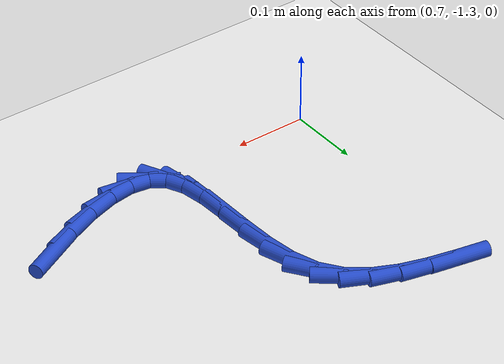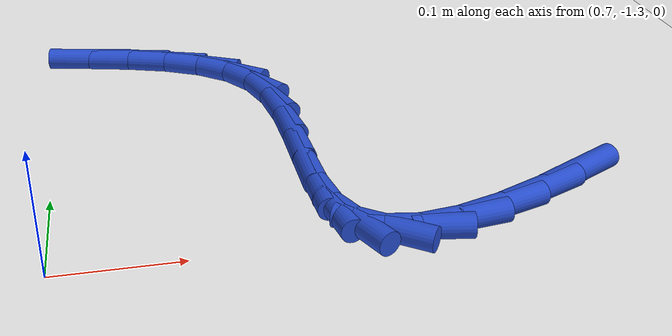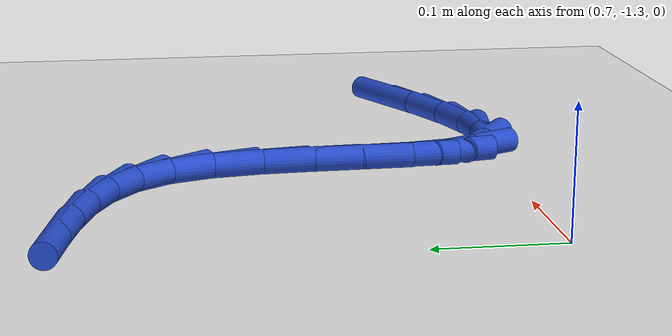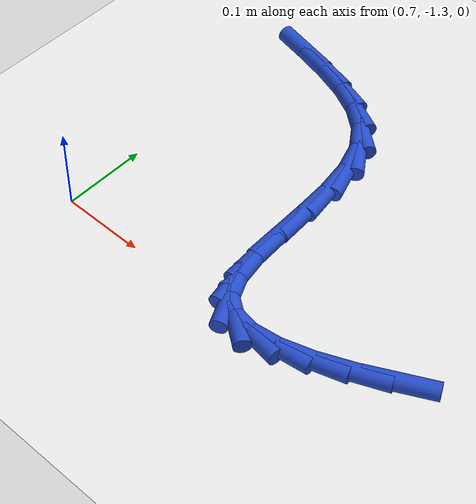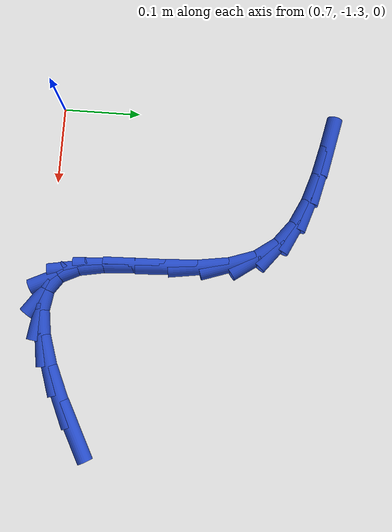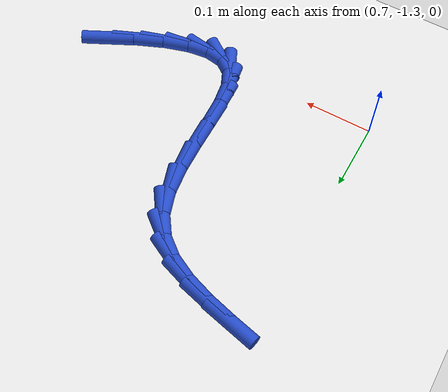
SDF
<sdf version="1.6">
 <world name="default">
  <model name="ground_plane">
   <static>1</static>
   <link name="link">
    <collision name="collision">
     <geometry><plane><normal>0 0 1</normal><size>100 100</size></plane></geometry>
     <surface><friction><ode><mu>100</mu><mu2>50</mu2></ode></friction></surface>
    </collision>
    <visual name="visual">
     <cast_shadows>0</cast_shadows>
     <geometry><plane><normal>0 0 1</normal><size>100 100</size></plane></geometry>
     <material>
      <script><uri>file://media/materials/scripts/gazebo.material</uri><name>Gazebo/WhiteGlow</name></script>
     </material>
    </visual>
   </link>
  </model>
  <model name="line">
   <link name="link_167">
    <pose>1.1180493330858208 -1.2499848872691812 0.01 0 1.57 0.4731315639812562</pose>
    <collision name="collision">
     <geometry><cylinder><radius>0.01</radius><length>0.08</length></cylinder></geometry>
    </collision>
    <visual name="visual">
     <material>
      <script><name>Gazebo/Blue</name><uri>file://media/materials/scripts/gazebo.material</uri></script>
     </material>
     <geometry><cylinder><radius>0.01</radius><length>0.08</length></cylinder></geometry>
    </visual>
   </link>
   <link name="link_168">
    <pose>1.0769013761591497 -1.2710490114015718 0.01 0 1.57 0.40471426474974664</pose>
    <collision name="collision">
     <geometry><cylinder><radius>0.01</radius><length>0.08</length></cylinder></geometry>
    </collision>
    <visual name="visual">
     <material>
      <script><name>Gazebo/Blue</name><uri>file://media/materials/scripts/gazebo.material</uri></script>
     </material>
     <geometry><cylinder><radius>0.01</radius><length>0.08</length></cylinder></geometry>
    </visual>
   </link>
   <link name="link_169">
    <pose>1.0376006698977345 -1.2878839136956466 0.01 0 1.57 0.3009454368842671</pose>
    <collision name="collision">
     <geometry><cylinder><radius>0.01</radius><length>0.08</length></cylinder></geometry>
    </collision>
    <visual name="visual">
     <material>
      <script><name>Gazebo/Blue</name><uri>file://media/materials/scripts/gazebo.material</uri></script>
     </material>
     <geometry><cylinder><radius>0.01</radius><length>0.08</length></cylinder></geometry>
    </visual>
   </link>
   <link name="link_170">
    <pose>1.0014188966786255 -1.2991137395728756 0.01 0 1.57 0.1328628600080185</pose>
    <collision name="collision">
     <geometry><cylinder><radius>0.01</radius><length>0.08</length></cylinder></geometry>
    </collision>
    <visual name="visual">
     <material>
      <script><name>Gazebo/Blue</name><uri>file://media/materials/scripts/gazebo.material</uri></script>
     </material>
     <geometry><cylinder><radius>0.01</radius><length>0.08</length></cylinder></geometry>
    </visual>
   </link>
   <link name="link_171">
    <pose>0.9696277388788686 -1.30336263445473 0.01 0 1.57 -0.15594017232067933</pose>
    <collision name="collision">
     <geometry><cylinder><radius>0.01</radius><length>0.08</length></cylinder></geometry>
    </collision>
    <visual name="visual">
     <material>
      <script><name>Gazebo/Blue</name><uri>file://media/materials/scripts/gazebo.material</uri></script>
     </material>
     <geometry><cylinder><radius>0.01</radius><length>0.08</length></cylinder></geometry>
    </visual>
   </link>
   <link name="link_172">
    <pose>0.9434988788755115 -1.2992547437626802 0.01 0 1.57 -0.6247161427225413</pose>
    <collision name="collision">
     <geometry><cylinder><radius>0.01</radius><length>0.08</length></cylinder></geometry>
    </collision>
    <visual name="visual">
     <material>
      <script><name>Gazebo/Blue</name><uri>file://media/materials/scripts/gazebo.material</uri></script>
     </material>
     <geometry><cylinder><radius>0.01</radius><length>0.08</length></cylinder></geometry>
    </visual>
   </link>
   <link name="link_173">
    <pose>0.9243039953501261 -1.2854142170806975 0.01 0 1.57 -1.1236360719021516</pose>
    <collision name="collision">
     <geometry><cylinder><radius>0.01</radius><length>0.08</length></cylinder></geometry>
    </collision>
    <visual name="visual">
     <material>
      <script><name>Gazebo/Blue</name><uri>file://media/materials/scripts/gazebo.material</uri></script>
     </material>
     <geometry><cylinder><radius>0.01</radius><length>0.08</length></cylinder></geometry>
    </visual>
   </link>
   <link name="link_174">
    <pose>0.912681549873857 -1.2611784454704877 0.01 0 1.57 -1.3944238966393292</pose>
    <collision name="collision">
     <geometry><cylinder><radius>0.01</radius><length>0.08</length></cylinder></geometry>
    </collision>
    <visual name="visual">
     <material>
      <script><name>Gazebo/Blue</name><uri>file://media/materials/scripts/gazebo.material</uri></script>
     </material>
     <geometry><cylinder><radius>0.01</radius><length>0.08</length></cylinder></geometry>
    </visual>
   </link>
   <link name="link_175">
    <pose>0.9068726349648647 -1.2285851624479704 0.01 0 1.57 -1.5102145890342524</pose>
    <collision name="collision">
     <geometry><cylinder><radius>0.01</radius><length>0.08</length></cylinder></geometry>
    </collision>
    <visual name="visual">
     <material>
      <script><name>Gazebo/Blue</name><uri>file://media/materials/scripts/gazebo.material</uri></script>
     </material>
     <geometry><cylinder><radius>0.01</radius><length>0.08</length></cylinder></geometry>
    </visual>
   </link>
   <link name="link_176">
    <pose>0.9045510819830423 -1.1903110517092168 0.01 0 1.57 -1.5426930505375318</pose>
    <collision name="collision">
     <geometry><cylinder><radius>0.01</radius><length>0.08</length></cylinder></geometry>
    </collision>
    <visual name="visual">
     <material>
      <script><name>Gazebo/Blue</name><uri>file://media/materials/scripts/gazebo.material</uri></script>
     </material>
     <geometry><cylinder><radius>0.01</radius><length>0.08</length></cylinder></geometry>
    </visual>
   </link>
   <link name="link_177">
    <pose>0.9033907222882839 -1.1490327969502994 0.01 0 1.57 -1.5149646128571101</pose>
    <collision name="collision">
     <geometry><cylinder><radius>0.01</radius><length>0.08</length></cylinder></geometry>
    </collision>
    <visual name="visual">
     <material>
      <script><name>Gazebo/Blue</name><uri>file://media/materials/scripts/gazebo.material</uri></script>
     </material>
     <geometry><cylinder><radius>0.01</radius><length>0.08</length></cylinder></geometry>
    </visual>
   </link>
   <link name="link_178">
    <pose>0.9010653872404827 -1.1074270818672896 0.01 0 1.57 -1.4237004608675692</pose>
    <collision name="collision">
     <geometry><cylinder><radius>0.01</radius><length>0.08</length></cylinder></geometry>
    </collision>
    <visual name="visual">
     <material>
      <script><name>Gazebo/Blue</name><uri>file://media/materials/scripts/gazebo.material</uri></script>
     </material>
     <geometry><cylinder><radius>0.01</radius><length>0.08</length></cylinder></geometry>
    </visual>
   </link>
   <link name="link_179">
    <pose>0.8952489081995325 -1.0681705901562606 0.01 0 1.57 -1.2431784688248713</pose>
    <collision name="collision">
     <geometry><cylinder><radius>0.01</radius><length>0.08</length></cylinder></geometry>
    </collision>
    <visual name="visual">
     <material>
      <script><name>Gazebo/Blue</name><uri>file://media/materials/scripts/gazebo.material</uri></script>
     </material>
     <geometry><cylinder><radius>0.01</radius><length>0.08</length></cylinder></geometry>
    </visual>
   </link>
   <link name="link_180">
    <pose>0.8836151165253272 -1.0339400055132844 0.01 0 1.57 -0.9527378048337005</pose>
    <collision name="collision">
     <geometry><cylinder><radius>0.01</radius><length>0.08</length></cylinder></geometry>
    </collision>
    <visual name="visual">
     <material>
      <script><name>Gazebo/Blue</name><uri>file://media/materials/scripts/gazebo.material</uri></script>
     </material>
     <geometry><cylinder><radius>0.01</radius><length>0.08</length></cylinder></geometry>
    </visual>
   </link>
   <link name="link_181">
    <pose>0.8643527174621543 -1.006847340725702 0.01 0 1.57 -0.6645972252173452</pose>
    <collision name="collision">
     <geometry><cylinder><radius>0.01</radius><length>0.08</length></cylinder></geometry>
    </collision>
    <visual name="visual">
     <material>
      <script><name>Gazebo/Blue</name><uri>file://media/materials/scripts/gazebo.material</uri></script>
     </material>
     <geometry><cylinder><radius>0.01</radius><length>0.08</length></cylinder></geometry>
    </visual>
   </link>
   <link name="link_182">
    <pose>0.838121120155261 -0.9862949457697384 0.01 0 1.57 -0.45152506206838283</pose>
    <collision name="collision">
     <geometry><cylinder><radius>0.01</radius><length>0.08</length></cylinder></geometry>
    </collision>
    <visual name="visual">
     <material>
      <script><name>Gazebo/Blue</name><uri>file://media/materials/scripts/gazebo.material</uri></script>
     </material>
     <geometry><cylinder><radius>0.01</radius><length>0.08</length></cylinder></geometry>
    </visual>
   </link>
   <link name="link_183">
    <pose>0.8063199457006519 -0.9708733676392686 0.01 0 1.57 -0.31447811539105763</pose>
    <collision name="collision">
     <geometry><cylinder><radius>0.01</radius><length>0.08</length></cylinder></geometry>
    </collision>
    <visual name="visual">
     <material>
      <script><name>Gazebo/Blue</name><uri>file://media/materials/scripts/gazebo.material</uri></script>
     </material>
     <geometry><cylinder><radius>0.01</radius><length>0.08</length></cylinder></geometry>
    </visual>
   </link>
   <link name="link_184">
    <pose>0.7703489530666138 -0.9591730021212977 0.01 0 1.57 -0.23776246968562006</pose>
    <collision name="collision">
     <geometry><cylinder><radius>0.01</radius><length>0.08</length></cylinder></geometry>
    </collision>
    <visual name="visual">
     <material>
      <script><name>Gazebo/Blue</name><uri>file://media/materials/scripts/gazebo.material</uri></script>
     </material>
     <geometry><cylinder><radius>0.01</radius><length>0.08</length></cylinder></geometry>
    </visual>
   </link>
   <link name="link_185">
    <pose>0.7316079012214332 -0.9497842450028313 0.01 0 1.57 -0.20850481166519136</pose>
    <collision name="collision">
     <geometry><cylinder><radius>0.01</radius><length>0.08</length></cylinder></geometry>
    </collision>
    <visual name="visual">
     <material>
      <script><name>Gazebo/Blue</name><uri>file://media/materials/scripts/gazebo.material</uri></script>
     </material>
     <geometry><cylinder><radius>0.01</radius><length>0.08</length></cylinder></geometry>
    </visual>
   </link>
  </model>
 </world>
</sdf>
